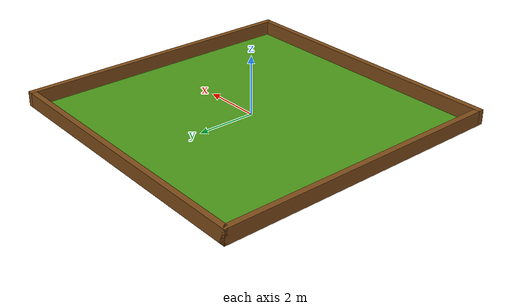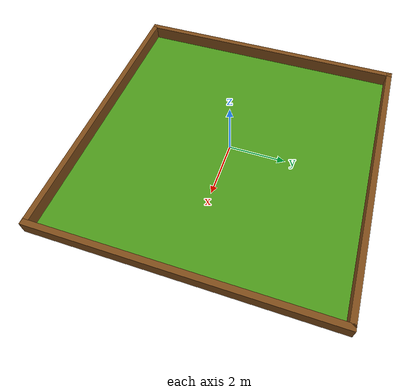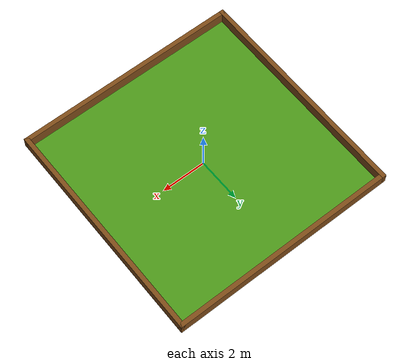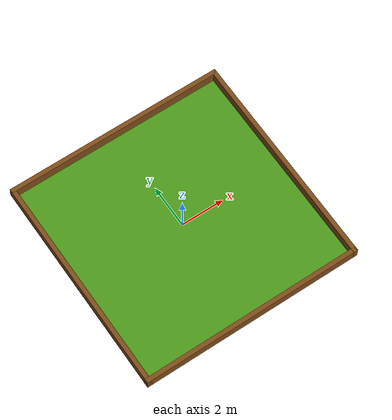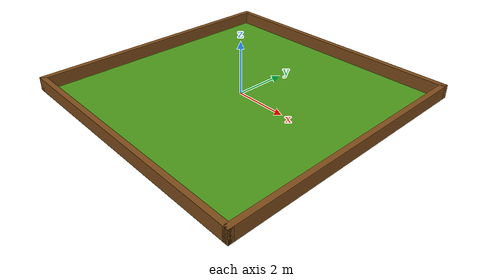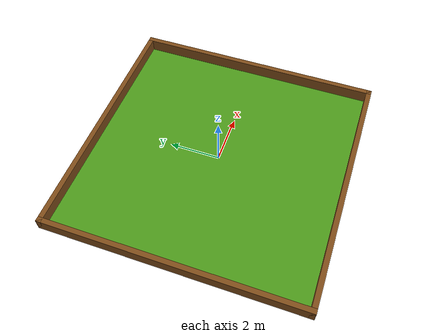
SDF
<?xml version="1.0" ?>
<sdf version="1.8">
    <world name="virtual_grass_world">
        <physics name="1ms" type="ignored">
            <max_step_size>0.001</max_step_size>
            <real_time_factor>1.0</real_time_factor>
        </physics>

        <plugin filename="libgz-sim-physics-system.so" name="gz::sim::systems::Physics"/>
        <plugin filename="libgz-sim-user-commands-system.so" name="gz::sim::systems::UserCommands"/>
        <plugin filename="libgz-sim-scene-broadcaster-system.so" name="gz::sim::systems::SceneBroadcaster"/>
        <plugin filename="libgz-sim-navsat-system" name="gz::sim::systems::NavSat"/>
        <plugin filename="libgz-sim-imu-system.so" name="gz::sim::systems::Imu"/>

        <spherical_coordinates>
            <surface_model>EARTH_WGS84</surface_model>
            <world_frame_orientation>ENU</world_frame_orientation>
            <latitude_deg>-22.9</latitude_deg>
            <longitude_deg>-43.2</longitude_deg>
            <elevation>0</elevation>
            <heading_deg>0</heading_deg>
        </spherical_coordinates>

        <!-- Sun light -->
        <light type="directional" name="sun">
            <cast_shadows>true</cast_shadows>
            <pose>0 0 10 0 0 0</pose>
            <diffuse>0.8 0.8 0.8 1</diffuse>
            <specular>0.2 0.2 0.2 1</specular>
            <direction>-0.5 0.1 -0.9</direction>
        </light>

        <!-- Uncut Grass Ground Plane -->
        <model name="uncut_grass_ground">
            <static>true</static>
            <pose>0 0 0 0 0 0</pose>
            <link name="link">
                <visual name="visual">
                    <geometry>
                        <plane>
                            <normal>0 0 1</normal>
                            <size>10 10</size>
                        </plane>
                    </geometry>
                    <material>
                        <!-- Light Green representing Tall Uncut Grass -->
                        <ambient>0.3 0.6 0.1 1.0</ambient>
                        <diffuse>0.3 0.6 0.1 1.0</diffuse>
                        <specular>0.05 0.05 0.05 1</specular>
                    </material>
                </visual>
                <collision name="collision">
                    <geometry>
                        <plane>
                            <normal>0 0 1</normal>
                            <size>10 10</size>
                        </plane>
                    </geometry>
                </collision>
            </link>
        </model>

        <!-- Boundary Walls -->
        <model name="boundary_walls">
            <static>true</static>
            <pose>0 0 0.25 0 0 0</pose>
            <!-- North Wall -->
            <link name="north_wall">
                <pose>5 0 0 0 0 0</pose>
                <visual name="v"><geometry><box><size>0.2 10.2 0.5</size></box></geometry><material><ambient>0.5 0.3 0.1 1</ambient><diffuse>0.5 0.3 0.1 1</diffuse></material></visual>
                <collision name="c"><geometry><box><size>0.2 10.2 0.5</size></box></geometry></collision>
            </link>
            <!-- South Wall -->
            <link name="south_wall">
                <pose>-5 0 0 0 0 0</pose>
                <visual name="v"><geometry><box><size>0.2 10.2 0.5</size></box></geometry><material><ambient>0.5 0.3 0.1 1</ambient><diffuse>0.5 0.3 0.1 1</diffuse></material></visual>
                <collision name="c"><geometry><box><size>0.2 10.2 0.5</size></box></geometry></collision>
            </link>
            <!-- East Wall -->
            <link name="east_wall">
                <pose>0 5 0 0 0 0</pose>
                <visual name="v"><geometry><box><size>10.2 0.2 0.5</size></box></geometry><material><ambient>0.5 0.3 0.1 1</ambient><diffuse>0.5 0.3 0.1 1</diffuse></material></visual>
                <collision name="c"><geometry><box><size>10.2 0.2 0.5</size></box></geometry></collision>
            </link>
            <!-- West Wall -->
            <link name="west_wall">
                <pose>0 -5 0 0 0 0</pose>
                <visual name="v"><geometry><box><size>10.2 0.2 0.5</size></box></geometry><material><ambient>0.5 0.3 0.1 1</ambient><diffuse>0.5 0.3 0.1 1</diffuse></material></visual>
                <collision name="c"><geometry><box><size>10.2 0.2 0.5</size></box></geometry></collision>
            </link>
        </model>

    </world>
</sdf>
